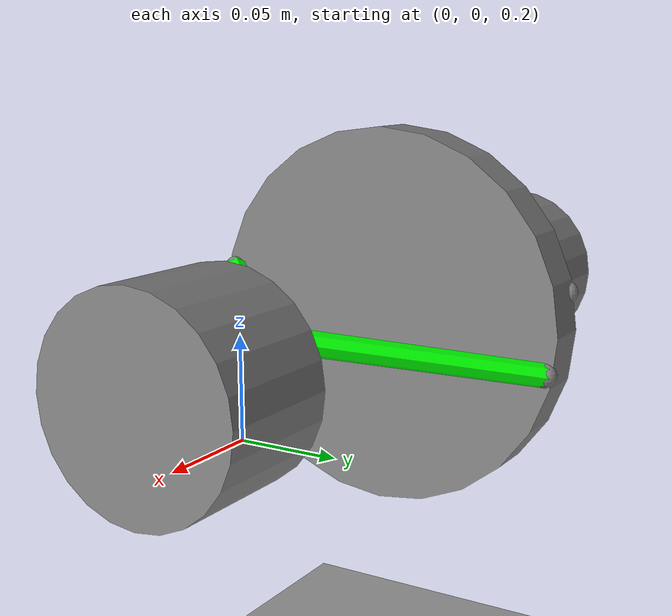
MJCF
<mujoco model="single_actuator">
    <option timestep="0.001"/>
    <size njmax="200" nconmax="100"/>

    <asset>
        <texture name="grid" type="2d" builtin="checker" width="300" height="300"
             rgb1="0.8 0.8 0.8" rgb2="0.5 0.5 0.5" mark="edge" markrgb="0.2 0.2 0.2"/>
        <material name="gridmat" texture="grid" texrepeat="5 5" reflectance="0.1"/>
    </asset>

    <worldbody>
        <geom name="floor" type="plane" size="5 5 0.1" material="gridmat" friction="0.2 0.02 0.01"/>

        <body name="block_a" pos="-0.2 0 0.2">
            <!-- Cable 1 A -->
            <body name="spring_1a" pos="0.05 0.07 0.065">
                <joint name="spring1a_hinge" type="hinge" axis="1 0 0" limited="true" range="0 3.14"/>
                <geom type="cylinder" fromto="0 0 0 0.05 0 0" size="0.04" density="150" />

                <site name="siteM1a1" pos="0.05 0.03 0.015"/>
                <site name="siteM1a2" pos="0.05 -0.03 -0.015"/>
            </body>

            <body name="spring_1b" pos="0.175 0.07 0.065">
                <geom type="cylinder" fromto="0 0 0 0.02 0 0" size="0.08" density="150"/>
                <joint name="spring1b_hinge" type="hinge" axis="1 0 0"/>
                <site name="siteM1b1" pos="0 -0.075 -0.015"/>
                <site name="siteM1b2" pos="0 0.075 0.015"/>

                <site name="siteM1b3" pos="0.02 -0.075 0.015"/>
                <site name="siteM1b4" pos="0.02 0.075 -0.015"/>
            </body>
        </body>
        <body name="block_b" pos="0.2 0 0.2">
        <!-- Cable 1 C-->
            <body name="spring_1c" pos="-0.05 0.07 0.065">
                <geom type="cylinder" fromto="0 0 0 -0.05 0 0" size="0.04" density="150"/>
                <joint name="spring1c_slide" type="slide" axis="1 0 0"/>
                <site name="siteM1c1" pos="-0.05 0.03 -0.015"/>
                <site name="siteM1c2" pos="-0.05 -0.03 0.015"/>
            </body>
        </body>
    </worldbody>

    <actuator>
        <position name="spring1a_motor" joint="spring1a_hinge" kp="10" ctrlrange="0 3.14"/>
    </actuator>

    <tendon>
        <spatial name="inter1a1" width="0.005" rgba="0 1 0 1" stiffness="5000" damping="25">
            <site site="siteM1a1"/>
            <site site="siteM1b1"/>
        </spatial>
        <spatial name="inter1a2" width="0.005" rgba="0 1 0 1" stiffness="5000" damping="25">
            <site site="siteM1a2"/>
            <site site="siteM1b2"/>
        </spatial>
        <spatial name="inter1b1" width="0.005" rgba="0 1 0 1" stiffness="5000" damping="25">
            <site site="siteM1b3"/>
            <site site="siteM1c1"/>
        </spatial>
        <spatial name="inter1b2" width="0.005" rgba="0 1 0 1" stiffness="5000" damping="25">
            <site site="siteM1b4"/>
            <site site="siteM1c2"/>
        </spatial>
    </tendon>

</mujoco>
